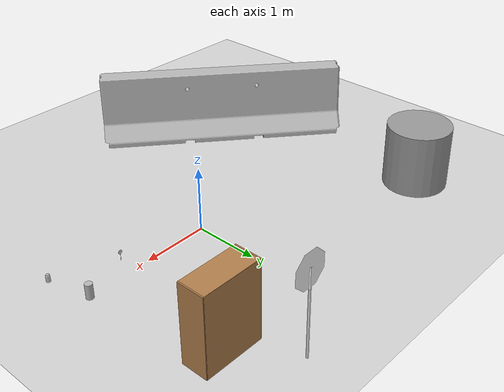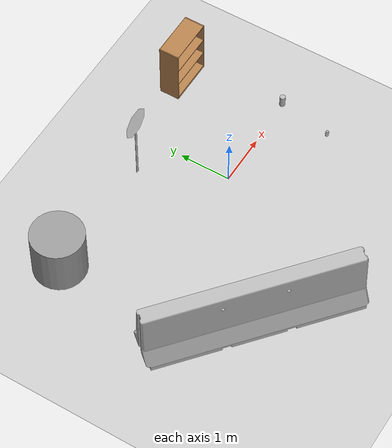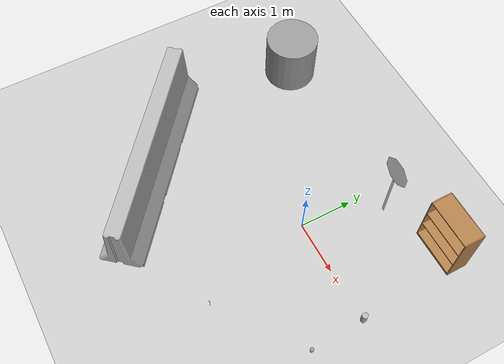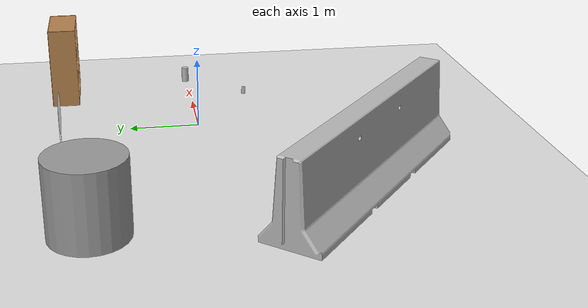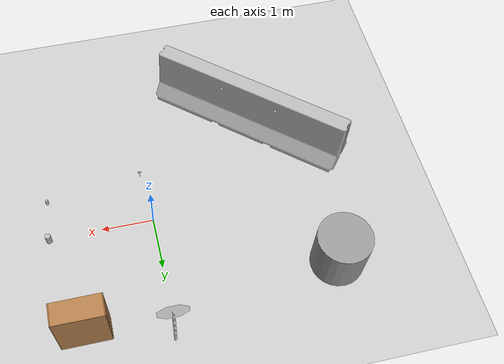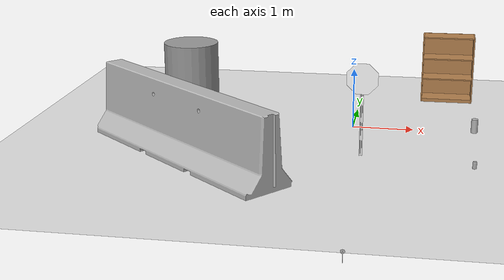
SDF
<sdf version="1.6">
 <world name="default">
  <light name="sun" type="directional">
   <pose>0 0 10 0 -0 0</pose>
   <diffuse>0.8 0.8 0.8 1</diffuse>
   <specular>0.2 0.2 0.2 1</specular>
   <attenuation>
    <range>1000</range>
    <constant>0.9</constant>
    <linear>0.01</linear>
    <quadratic>0.001</quadratic>
   </attenuation>
   <direction>0.5 0.1 -0.9</direction>
  </light>
  <scene><ambient>0.4 0.4 0.4 1</ambient><background>0.7 0.7 0.7 1</background><shadows>1</shadows></scene>
  <physics name="default_physics" default="0" type="ode">
   <max_step_size>0.01</max_step_size>
   <real_time_factor>1</real_time_factor>
   <real_time_update_rate>100</real_time_update_rate>
  </physics>
  <model name="bookshelf">
   <static>1</static>
   <link name="link">
    <inertial><mass>1</mass></inertial>
    <collision name="back">
     <pose>0 0.005 0.6 0 -0 0</pose>
     <geometry><box><size>0.9 0.01 1.2</size></box></geometry>
    </collision>
    <visual name="visual1">
     <pose>0 0.005 0.6 0 -0 0</pose>
     <geometry><box><size>0.9 0.01 1.2</size></box></geometry>
     <material>
      <script><uri>file://media/materials/scripts/gazebo.material</uri><name>Gazebo/Wood</name></script>
     </material>
    </visual>
    <collision name="left_side">
     <pose>0.45 -0.195 0.6 0 -0 0</pose>
     <geometry><box><size>0.02 0.4 1.2</size></box></geometry>
    </collision>
    <visual name="visual2">
     <pose>0.45 -0.195 0.6 0 -0 0</pose>
     <geometry><box><size>0.02 0.4 1.2</size></box></geometry>
     <material>
      <script><uri>file://media/materials/scripts/gazebo.material</uri><name>Gazebo/Wood</name></script>
     </material>
    </visual>
    <collision name="right_side">
     <pose>-0.45 -0.195 0.6 0 -0 0</pose>
     <geometry><box><size>0.02 0.4 1.2</size></box></geometry>
    </collision>
    <visual name="visual3">
     <pose>-0.45 -0.195 0.6 0 -0 0</pose>
     <geometry><box><size>0.02 0.4 1.2</size></box></geometry>
     <material>
      <script><uri>file://media/materials/scripts/gazebo.material</uri><name>Gazebo/Wood</name></script>
     </material>
    </visual>
    <collision name="bottom">
     <pose>0 -0.195 0.03 0 -0 0</pose>
     <geometry><box><size>0.88 0.4 0.06</size></box></geometry>
    </collision>
    <visual name="visual4">
     <pose>0 -0.195 0.03 0 -0 0</pose>
     <geometry><box><size>0.88 0.4 0.06</size></box></geometry>
     <material>
      <script><uri>file://media/materials/scripts/gazebo.material</uri><name>Gazebo/Wood</name></script>
     </material>
    </visual>
    <collision name="top">
     <pose>0 -0.195 1.19 0 -0 0</pose>
     <geometry><box><size>0.88 0.4 0.02</size></box></geometry>
    </collision>
    <visual name="visual5">
     <pose>0 -0.195 1.19 0 -0 0</pose>
     <geometry><box><size>0.88 0.4 0.02</size></box></geometry>
     <material>
      <script><uri>file://media/materials/scripts/gazebo.material</uri><name>Gazebo/Wood</name></script>
     </material>
    </visual>
    <collision name="low_shelf">
     <pose>0 -0.195 0.43 0 -0 0</pose>
     <geometry><box><size>0.88 0.4 0.02</size></box></geometry>
    </collision>
    <visual name="visual6">
     <pose>0 -0.195 0.43 0 -0 0</pose>
     <geometry><box><size>0.88 0.4 0.02</size></box></geometry>
     <material>
      <script><uri>file://media/materials/scripts/gazebo.material</uri><name>Gazebo/Wood</name></script>
     </material>
    </visual>
    <collision name="high_shelf">
     <pose>0 -0.195 0.8 0 -0 0</pose>
     <geometry><box><size>0.88 0.4 0.02</size></box></geometry>
    </collision>
    <visual name="visual7">
     <pose>0 -0.195 0.8 0 -0 0</pose>
     <geometry><box><size>0.88 0.4 0.02</size></box></geometry>
     <material>
      <script><uri>file://media/materials/scripts/gazebo.material</uri><name>Gazebo/Wood</name></script>
     </material>
    </visual>
    <velocity_decay><linear>0</linear><angular>0</angular></velocity_decay>
   </link>
   <pose>1.55008 2.14467 0 0 -0 0</pose>
  </model>
  <model name="jersey_barrier">
   <static>1</static>
   <link name="link">
    <visual name="visual">
     <geometry>
      <mesh><uri>model://jersey_barrier/meshes/jersey_barrier.dae</uri><scale>1 1 1</scale></mesh>
     </geometry>
    </visual>
    <collision name="upright">
     <pose>0 0 0.5715 0 -0 0</pose>
     <geometry><box><size>4.06542 0.3063 1.143</size></box></geometry>
    </collision>
    <collision name="base">
     <pose>0 0 0.032258 0 -0 0</pose>
     <geometry><box><size>4.06542 0.8107 0.064516</size></box></geometry>
    </collision>
    <collision name="base2">
     <pose>0 0 0.1 0 -0 0</pose>
     <geometry><box><size>4.06542 0.65 0.1</size></box></geometry>
    </collision>
    <collision name="base3">
     <pose>0 0 0.2 0 -0 0</pose>
     <geometry><box><size>4.06542 0.5 0.1</size></box></geometry>
    </collision>
    <collision name="left-angle">
     <pose>0 -0.224 0.2401 0.9 -0 0</pose>
     <geometry><box><size>4.06542 0.5 0.064516</size></box></geometry>
    </collision>
    <collision name="right-angle">
     <pose>0 0.224 0.2401 -0.9 0 0</pose>
     <geometry><box><size>4.06542 0.5 0.064516</size></box></geometry>
    </collision>
    <velocity_decay><linear>0</linear><angular>0</angular></velocity_decay>
   </link>
   <pose>-2.37679 -1.89505 0 0 0 -0.7</pose>
  </model>
  <model name="ground_plane_0">
   <static>1</static>
   <link name="link">
    <collision name="collision">
     <geometry><plane><normal>0 0 1</normal><size>100 100</size></plane></geometry>
     <surface><friction><ode><mu>100</mu><mu2>50</mu2></ode></friction></surface>
    </collision>
    <visual name="visual">
     <cast_shadows>0</cast_shadows>
     <geometry><plane><normal>0 0 1</normal><size>100 100</size></plane></geometry>
     <material>
      <script><uri>file://media/materials/scripts/gazebo.material</uri><name>Gazebo/Grey</name></script>
     </material>
    </visual>
    <velocity_decay><linear>0</linear><angular>0</angular></velocity_decay>
   </link>
   <pose>0.497681 0 0 0 -0 0</pose>
  </model>
  <model name="unit_cylinder_1">
   <pose>-3.17699 1.56032 0.49912 0 0 -1e-06</pose>
   <link name="link">
    <inertial>
     <mass>1</mass>
     <inertia><ixx>1</ixx><ixy>0</ixy><ixz>0</ixz><iyy>1</iyy><iyz>0</iyz><izz>1</izz></inertia>
    </inertial>
    <collision name="collision">
     <geometry><cylinder><radius>0.5</radius><length>1</length></cylinder></geometry>
    </collision>
    <visual name="visual">
     <geometry><cylinder><radius>0.5</radius><length>1</length></cylinder></geometry>
     <material>
      <script><uri>file://media/materials/scripts/gazebo.material</uri><name>Gazebo/Grey</name></script>
     </material>
    </visual>
    <velocity_decay><linear>0</linear><angular>0</angular></velocity_decay>
   </link>
   <static>0</static>
  </model>
  <gravity>0 0 -9.8</gravity>
  <magnetic_field>6e-06 2.3e-05 -4.2e-05</magnetic_field>
  <atmosphere type="adiabatic"/>
  <spherical_coordinates>
   <surface_model>EARTH_WGS84</surface_model>
   <latitude_deg>0</latitude_deg>
   <longitude_deg>0</longitude_deg>
   <elevation>0</elevation>
   <heading_deg>0</heading_deg>
  </spherical_coordinates>
  <model name="beer">
   <link name="link">
    <pose>0 0 0.115 0 -0 0</pose>
    <inertial>
     <mass>0.39</mass>
     <inertia><ixx>0.00058</ixx><ixy>0</ixy><ixz>0</ixz><iyy>0.00058</iyy><iyz>0</iyz><izz>0.00019</izz></inertia>
    </inertial>
    <collision name="collision">
     <geometry><cylinder><radius>0.055</radius><length>0.23</length></cylinder></geometry>
    </collision>
    <visual name="visual">
     <geometry><cylinder><radius>0.055</radius><length>0.23</length></cylinder></geometry>
     <material>
      <script>
       <uri>model://beer/materials/scripts</uri>
       <uri>model://beer/materials/textures</uri>
       <name>Beer/Diffuse</name>
      </script>
     </material>
    </visual>
   </link>
   <pose>1.99945 0.025525 -0.00088 5e-05 -1e-05 -0.001066</pose>
  </model>
  <model name="coke_can">
   <link name="link">
    <inertial>
     <mass>0.39</mass>
     <inertia><ixx>0.00058</ixx><ixy>0</ixy><ixz>0</ixz><iyy>0.00058</iyy><iyz>0</iyz><izz>0.00019</izz></inertia>
    </inertial>
    <collision name="collision">
     <pose>0 0 -0.46 0 -0 0</pose>
     <geometry><mesh><uri>model://coke_can/meshes/coke_can.dae</uri><scale>1 1 1</scale></mesh></geometry>
    </collision>
    <visual name="visual">
     <pose>0 0 -0.46 0 -0 0</pose>
     <geometry><mesh><uri>model://coke_can/meshes/coke_can.dae</uri><scale>1 1 1</scale></mesh></geometry>
    </visual>
   </link>
   <pose>1.99669 -0.970586 -0.004138 -0.042211 0.015161 -2.29123</pose>
  </model>
  <model name="Stop_Sign_0">
   <link name="Stop Sign_0::link">
    <inertial>
     <inertia><ixx>1</ixx><ixy>0</ixy><ixz>0</ixz><iyy>1</iyy><iyz>0</iyz><izz>1</izz></inertia>
     <mass>1</mass>
    </inertial>
    <visual name="visual">
     <geometry><mesh><uri>model://stop_sign/meshes/stop_sign.dae</uri><scale>1 1 1</scale></mesh></geometry>
     <material>
      <script>
       <uri>model://stop_sign/materials/scripts</uri>
       <uri>model://stop_sign/materials/textures</uri>
       <name>StopSign/Diffuse</name>
      </script>
      <ambient>1 1 1 1</ambient>
      <diffuse>1 1 1 1</diffuse>
      <specular>0 0 0 1</specular>
      <emissive>0 0 0 1</emissive>
      <lighting>0</lighting>
      <shader type="vertex"><normal_map>__default__</normal_map></shader>
     </material>
    </visual>
    <collision name="collision">
     <geometry><mesh><uri>model://stop_sign/meshes/stop_sign.dae</uri><scale>1 1 1</scale></mesh></geometry>
     <surface>
      <friction>
       <ode><mu>1</mu><mu2>1</mu2><fdir1>0 0 0</fdir1><slip1>0</slip1><slip2>0</slip2></ode>
       <torsional>
        <coefficient>1</coefficient>
        <patch_radius>0</patch_radius>
        <surface_radius>0</surface_radius>
        <use_patch_radius>1</use_patch_radius>
        <ode><slip>0</slip></ode>
       </torsional>
      </friction>
      <bounce><restitution_coefficient>0</restitution_coefficient><threshold>1e+06</threshold></bounce>
      <contact>
       <collide_without_contact>0</collide_without_contact>
       <collide_without_contact_bitmask>1</collide_without_contact_bitmask>
       <collide_bitmask>1</collide_bitmask>
       <ode>
        <soft_cfm>0</soft_cfm>
        <soft_erp>0.2</soft_erp>
        <kp>1e+13</kp>
        <kd>1</kd>
        <max_vel>0.01</max_vel>
        <min_depth>0</min_depth>
       </ode>
       <bullet>
        <split_impulse>1</split_impulse>
        <split_impulse_penetration_threshold>-0.01</split_impulse_penetration_threshold>
        <soft_cfm>0</soft_cfm>
        <soft_erp>0.2</soft_erp>
        <kp>1e+13</kp>
        <kd>1</kd>
       </bullet>
      </contact>
     </surface>
    </collision>
   </link>
   <static>1</static>
   <pose>-0.006454 2.01125 -1.21223 0 -0 0</pose>
  </model>
  <model name="Speed_limit_0">
   <link name="link">
    <gravity>0</gravity>
    <inertial>
     <mass>1</mass>
     <inertia><ixx>1</ixx><ixy>0</ixy><ixz>0</ixz><iyy>1</iyy><iyz>0</iyz><izz>1</izz></inertia>
    </inertial>
    <visual name="visual">
     <geometry>
      <mesh><scale>1 1 1</scale><uri>model://speed_limit_sign/meshes/speed_limit_sign.dae</uri></mesh>
     </geometry>
     <material><lighting>0</lighting><shader type="vertex"><normal_map>__default__</normal_map></shader></material>
    </visual>
    <collision name="collision">
     <geometry>
      <mesh><uri>model://speed_limit_sign/meshes/speed_limit_sign.dae</uri><scale>1 1 1</scale></mesh>
     </geometry>
     <surface>
      <friction>
       <ode><mu>1</mu><mu2>1</mu2><fdir1>0 0 0</fdir1><slip1>0</slip1><slip2>0</slip2></ode>
       <torsional>
        <coefficient>1</coefficient>
        <patch_radius>0</patch_radius>
        <surface_radius>0</surface_radius>
        <use_patch_radius>1</use_patch_radius>
        <ode><slip>0</slip></ode>
       </torsional>
      </friction>
      <bounce><restitution_coefficient>0</restitution_coefficient><threshold>1e+06</threshold></bounce>
      <contact>
       <collide_without_contact>0</collide_without_contact>
       <collide_without_contact_bitmask>1</collide_without_contact_bitmask>
       <collide_bitmask>1</collide_bitmask>
       <ode>
        <soft_cfm>0</soft_cfm>
        <soft_erp>0.2</soft_erp>
        <kp>1e+13</kp>
        <kd>1</kd>
        <max_vel>0.01</max_vel>
        <min_depth>0</min_depth>
       </ode>
       <bullet>
        <split_impulse>1</split_impulse>
        <split_impulse_penetration_threshold>-0.01</split_impulse_penetration_threshold>
        <soft_cfm>0</soft_cfm>
        <soft_erp>0.2</soft_erp>
        <kp>1e+13</kp>
        <kd>1</kd>
       </bullet>
      </contact>
     </surface>
    </collision>
   </link>
   <static>1</static>
   <allow_auto_disable>0</allow_auto_disable>
   <pose>0.047579 -1.96023 -1.57113 0 -0 0</pose>
  </model>
 </world>
</sdf>
